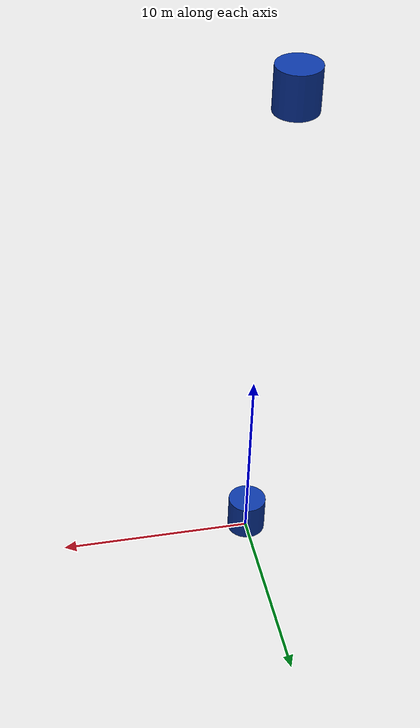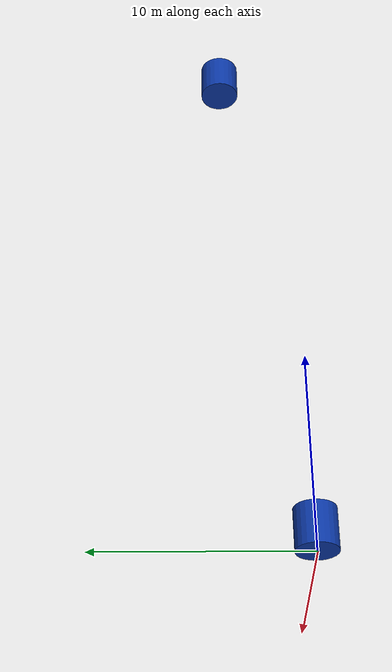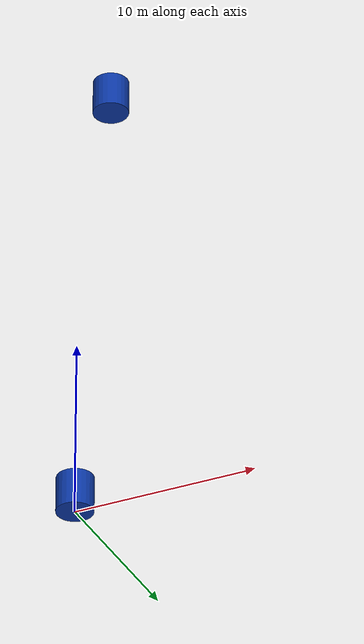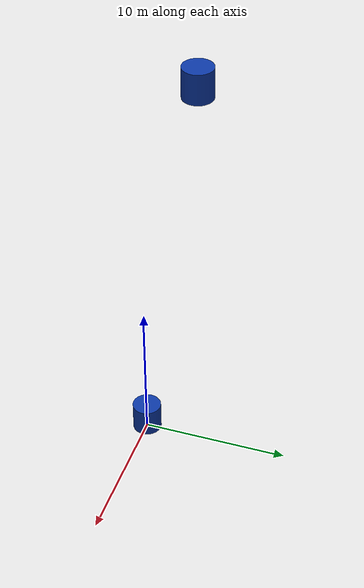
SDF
<?xml version="1.0"?>
<!-- created with Phobos 1.0.1 "Capricious Choutengan" -->
<sdf version="1.5">
  <model name="RobotArm">
    <link name="joint1">
      <pose>0 0 1.0 0 0 0</pose>
      <inertial>
        <mass>100.0</mass>
        <inertia>
          <ixx>57.85528</ixx>
          <ixy>0</ixy>
          <ixz>0</ixz>
          <iyy>57.85528</iyy>
          <iyz>0</iyz>
          <izz>49.0439</izz>
        </inertia>
        <pose>0 0 0 0 0 0</pose>
      </inertial>
      <collision name="Cylinder">
        <pose>0 0 0 0 0 0</pose>
        <geometry>
          <cylinder>
            <radius>0.99039</radius>
            <length>2.0</length>
          </cylinder>
        </geometry>
      </collision>
      <visual name="Cylinder">
        <pose>0.0 0.0 0.0 0.0 -0.0 0.0</pose>
        <material>
          <ambient>0.04045 0.21343 0.21343 1.0</ambient>
          <diffuse>0.04045 0.21343 0.64 1.0</diffuse>
          <specular>0.5 0.5 0.5 1.0</specular>
        </material>
        <geometry>
          <cylinder>
            <radius>0.99039</radius>
            <length>2.0</length>
          </cylinder>
        </geometry>
      </visual>
    </link>
    <link name="new_link">
      <pose>0 3.825 28.4 0 0 0</pose>
      <inertial>
        <mass>100.0</mass>
        <inertia>
          <ixx>57.8553</ixx>
          <ixy>0</ixy>
          <ixz>0</ixz>
          <iyy>57.85529</iyy>
          <iyz>-6e-05</iyz>
          <izz>49.04386</izz>
        </inertia>
        <pose>0 0 0 0 0 0</pose>
      </inertial>
      <collision name="Cylinder.006">
        <pose>0 0 0 0 0 0</pose>
        <geometry>
          <cylinder>
            <radius>1.0</radius>
            <length>1.98079</length>
          </cylinder>
        </geometry>
      </collision>
      <visual name="Cylinder.006">
        <pose>-2.6645352591003757e-15 7.152557373046875e-07 3.814697265625e-06 -5.142616146258661e-07 -0.0 0.0</pose>
        <material>
          <ambient>0.04102 0.21308 0.21308 1.0</ambient>
          <diffuse>0.04102 0.21308 0.63928 1.0</diffuse>
          <specular>0.5 0.5 0.5 1.0</specular>
        </material>
        <geometry>
          <cylinder>
            <radius>0.99039</radius>
            <length>2.0</length>
          </cylinder>
        </geometry>
      </visual>
    </link>
    <joint type="revolute" name="joint3">
      <parent>new_link</parent>
      <child>new_link</child>
      <pose>0.0 0.0 0.0 0.0 0.0 0.0</pose>
      <axis>
        <xyz>0 0 1.0</xyz>
        <limit>
          <lower>-4.5</lower>
          <upper>4.5</upper>
          <effort>0</effort>
          <velocity>3.0</velocity>
        </limit>
      </axis>
    </joint>
    <joint type="fixed" name="joint9">
      <parent>new_link</parent>
      <child>new_link</child>
      <pose>0.0 0.0 0.0 0.0 0.0 0.0</pose>
    </joint>
    <joint type="fixed" name="joint8">
      <parent>new_link</parent>
      <child>new_link</child>
      <pose>0.0 0.0 0.0 0.0 0.0 0.0</pose>
    </joint>
    <joint type="revolute" name="joint7">
      <parent>new_link</parent>
      <child>new_link</child>
      <pose>0.0 0.0 0.0 0.0 0.0 0.0</pose>
      <axis>
        <xyz>0 0 1.0</xyz>
        <limit>
          <lower>-4.5</lower>
          <upper>4.5</upper>
          <effort>0</effort>
          <velocity>3.0</velocity>
        </limit>
      </axis>
    </joint>
    <joint type="revolute" name="joint10">
      <parent>new_link</parent>
      <child>new_link</child>
      <pose>0.0 0.0 0.0 0.0 0.0 0.0</pose>
      <axis>
        <xyz>0 0 1.0</xyz>
        <limit>
          <lower>-4.5</lower>
          <upper>4.5</upper>
          <effort>0</effort>
          <velocity>3.0</velocity>
        </limit>
      </axis>
    </joint>
    <joint type="fixed" name="joint13">
      <parent>new_link</parent>
      <child>new_link</child>
      <pose>0.0 0.0 0.0 0.0 0.0 0.0</pose>
    </joint>
    <joint type="revolute" name="joint2">
      <parent>joint1</parent>
      <child>new_link</child>
      <pose>0.0 0.0 0.0 0.0 0.0 0.0</pose>
      <axis>
        <xyz>0 0 1.0</xyz>
        <limit>
          <lower>-4.5</lower>
          <upper>4.5</upper>
          <effort>0</effort>
          <velocity>3.0</velocity>
        </limit>
      </axis>
    </joint>
    <joint type="revolute" name="joint12">
      <parent>new_link</parent>
      <child>new_link</child>
      <pose>0.0 0.0 0.0 0.0 0.0 0.0</pose>
      <axis>
        <xyz>0 0 1.0</xyz>
        <limit>
          <lower>-4.5</lower>
          <upper>4.5</upper>
          <effort>0</effort>
          <velocity>3.0</velocity>
        </limit>
      </axis>
    </joint>
    <joint type="fixed" name="joint5">
      <parent>new_link</parent>
      <child>new_link</child>
      <pose>0.0 0.0 0.0 0.0 0.0 0.0</pose>
    </joint>
    <joint type="fixed" name="joint6">
      <parent>new_link</parent>
      <child>new_link</child>
      <pose>0.0 0.0 0.0 0.0 0.0 0.0</pose>
    </joint>
    <joint type="revolute" name="joint4">
      <parent>new_link</parent>
      <child>new_link</child>
      <pose>0.0 0.0 0.0 0.0 0.0 0.0</pose>
      <axis>
        <xyz>0 0 1.0</xyz>
        <limit>
          <lower>-4.5</lower>
          <upper>4.5</upper>
          <effort>0</effort>
          <velocity>3.0</velocity>
        </limit>
      </axis>
    </joint>
    <joint type="revolute" name="joint11">
      <parent>new_link</parent>
      <child>new_link</child>
      <pose>0.0 0.0 0.0 0.0 0.0 0.0</pose>
      <axis>
        <xyz>0 0 1.0</xyz>
        <limit>
          <lower>-4.5</lower>
          <upper>4.5</upper>
          <effort>0</effort>
          <velocity>3.0</velocity>
        </limit>
      </axis>
    </joint>
  </model>
</sdf>
